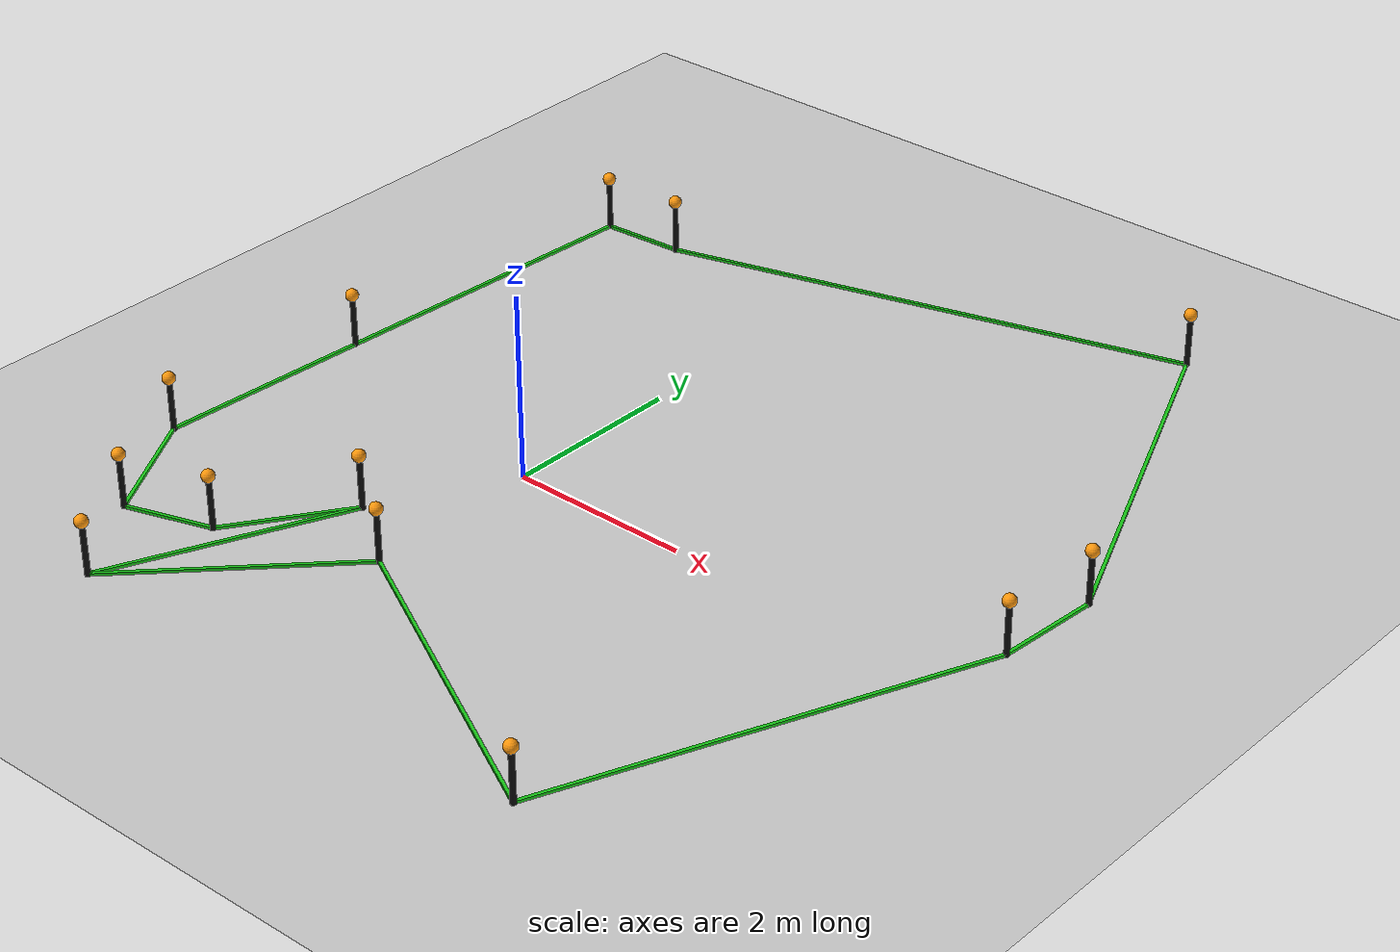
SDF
<?xml version="1.0" ?>
<sdf version="1.6">
  <world name="generated_task4_world">

    <include>
      <uri>model://sun</uri>
    </include>

    <include>
      <uri>model://ground_plane</uri>
    </include>

    <physics name="default_physics" default="0" type="ode">
      <max_step_size>0.001</max_step_size>
      <real_time_factor>1.0</real_time_factor>
      <real_time_update_rate>1000</real_time_update_rate>
    </physics>

    <model name="corner_pole_0">
      <static>true</static>
      <pose>3.684 6.067 0.275 0 0 0</pose>
      <link name="link">
        <visual name="visual">
          <geometry>
            <cylinder>
              <radius>0.03</radius>
              <length>0.55</length>
            </cylinder>
          </geometry>
          <material>
            <ambient>0.05 0.05 0.05 1</ambient>
            <diffuse>0.05 0.05 0.05 1</diffuse>
          </material>
        </visual>
        <collision name="collision">
          <geometry>
            <cylinder>
              <radius>0.03</radius>
              <length>0.55</length>
            </cylinder>
          </geometry>
        </collision>
      </link>
    </model>

    <model name="reflector_0">
      <static>true</static>
      <pose>3.684 6.067 0.600 0 0 0</pose>
      <link name="link">
        <visual name="visual">
          <geometry>
            <sphere>
              <radius>0.07</radius>
            </sphere>
          </geometry>
          <material>
            <ambient>1.0 0.6 0.05 1</ambient>
            <diffuse>1.0 0.6 0.05 1</diffuse>
          </material>
        </visual>
        <collision name="collision">
          <geometry>
            <sphere>
              <radius>0.07</radius>
            </sphere>
          </geometry>
        </collision>
      </link>
    </model>

    <model name="corner_pole_1">
      <static>true</static>
      <pose>-1.991 4.517 0.275 0 0 0</pose>
      <link name="link">
        <visual name="visual">
          <geometry>
            <cylinder>
              <radius>0.03</radius>
              <length>0.55</length>
            </cylinder>
          </geometry>
          <material>
            <ambient>0.05 0.05 0.05 1</ambient>
            <diffuse>0.05 0.05 0.05 1</diffuse>
          </material>
        </visual>
        <collision name="collision">
          <geometry>
            <cylinder>
              <radius>0.03</radius>
              <length>0.55</length>
            </cylinder>
          </geometry>
        </collision>
      </link>
    </model>

    <model name="reflector_1">
      <static>true</static>
      <pose>-1.991 4.517 0.600 0 0 0</pose>
      <link name="link">
        <visual name="visual">
          <geometry>
            <sphere>
              <radius>0.07</radius>
            </sphere>
          </geometry>
          <material>
            <ambient>1.0 0.6 0.05 1</ambient>
            <diffuse>1.0 0.6 0.05 1</diffuse>
          </material>
        </visual>
        <collision name="collision">
          <geometry>
            <sphere>
              <radius>0.07</radius>
            </sphere>
          </geometry>
        </collision>
      </link>
    </model>

    <model name="corner_pole_2">
      <static>true</static>
      <pose>-2.913 4.461 0.275 0 0 0</pose>
      <link name="link">
        <visual name="visual">
          <geometry>
            <cylinder>
              <radius>0.03</radius>
              <length>0.55</length>
            </cylinder>
          </geometry>
          <material>
            <ambient>0.05 0.05 0.05 1</ambient>
            <diffuse>0.05 0.05 0.05 1</diffuse>
          </material>
        </visual>
        <collision name="collision">
          <geometry>
            <cylinder>
              <radius>0.03</radius>
              <length>0.55</length>
            </cylinder>
          </geometry>
        </collision>
      </link>
    </model>

    <model name="reflector_2">
      <static>true</static>
      <pose>-2.913 4.461 0.600 0 0 0</pose>
      <link name="link">
        <visual name="visual">
          <geometry>
            <sphere>
              <radius>0.07</radius>
            </sphere>
          </geometry>
          <material>
            <ambient>1.0 0.6 0.05 1</ambient>
            <diffuse>1.0 0.6 0.05 1</diffuse>
          </material>
        </visual>
        <collision name="collision">
          <geometry>
            <sphere>
              <radius>0.07</radius>
            </sphere>
          </geometry>
        </collision>
      </link>
    </model>

    <model name="corner_pole_3">
      <static>true</static>
      <pose>-3.131 0.747 0.275 0 0 0</pose>
      <link name="link">
        <visual name="visual">
          <geometry>
            <cylinder>
              <radius>0.03</radius>
              <length>0.55</length>
            </cylinder>
          </geometry>
          <material>
            <ambient>0.05 0.05 0.05 1</ambient>
            <diffuse>0.05 0.05 0.05 1</diffuse>
          </material>
        </visual>
        <collision name="collision">
          <geometry>
            <cylinder>
              <radius>0.03</radius>
              <length>0.55</length>
            </cylinder>
          </geometry>
        </collision>
      </link>
    </model>

    <model name="reflector_3">
      <static>true</static>
      <pose>-3.131 0.747 0.600 0 0 0</pose>
      <link name="link">
        <visual name="visual">
          <geometry>
            <sphere>
              <radius>0.07</radius>
            </sphere>
          </geometry>
          <material>
            <ambient>1.0 0.6 0.05 1</ambient>
            <diffuse>1.0 0.6 0.05 1</diffuse>
          </material>
        </visual>
        <collision name="collision">
          <geometry>
            <sphere>
              <radius>0.07</radius>
            </sphere>
          </geometry>
        </collision>
      </link>
    </model>

    <model name="corner_pole_4">
      <static>true</static>
      <pose>-3.266 -1.628 0.275 0 0 0</pose>
      <link name="link">
        <visual name="visual">
          <geometry>
            <cylinder>
              <radius>0.03</radius>
              <length>0.55</length>
            </cylinder>
          </geometry>
          <material>
            <ambient>0.05 0.05 0.05 1</ambient>
            <diffuse>0.05 0.05 0.05 1</diffuse>
          </material>
        </visual>
        <collision name="collision">
          <geometry>
            <cylinder>
              <radius>0.03</radius>
              <length>0.55</length>
            </cylinder>
          </geometry>
        </collision>
      </link>
    </model>

    <model name="reflector_4">
      <static>true</static>
      <pose>-3.266 -1.628 0.600 0 0 0</pose>
      <link name="link">
        <visual name="visual">
          <geometry>
            <sphere>
              <radius>0.07</radius>
            </sphere>
          </geometry>
          <material>
            <ambient>1.0 0.6 0.05 1</ambient>
            <diffuse>1.0 0.6 0.05 1</diffuse>
          </material>
        </visual>
        <collision name="collision">
          <geometry>
            <sphere>
              <radius>0.07</radius>
            </sphere>
          </geometry>
        </collision>
      </link>
    </model>

    <model name="corner_pole_5">
      <static>true</static>
      <pose>-2.531 -2.898 0.275 0 0 0</pose>
      <link name="link">
        <visual name="visual">
          <geometry>
            <cylinder>
              <radius>0.03</radius>
              <length>0.55</length>
            </cylinder>
          </geometry>
          <material>
            <ambient>0.05 0.05 0.05 1</ambient>
            <diffuse>0.05 0.05 0.05 1</diffuse>
          </material>
        </visual>
        <collision name="collision">
          <geometry>
            <cylinder>
              <radius>0.03</radius>
              <length>0.55</length>
            </cylinder>
          </geometry>
        </collision>
      </link>
    </model>

    <model name="reflector_5">
      <static>true</static>
      <pose>-2.531 -2.898 0.600 0 0 0</pose>
      <link name="link">
        <visual name="visual">
          <geometry>
            <sphere>
              <radius>0.07</radius>
            </sphere>
          </geometry>
          <material>
            <ambient>1.0 0.6 0.05 1</ambient>
            <diffuse>1.0 0.6 0.05 1</diffuse>
          </material>
        </visual>
        <collision name="collision">
          <geometry>
            <sphere>
              <radius>0.07</radius>
            </sphere>
          </geometry>
        </collision>
      </link>
    </model>

    <model name="corner_pole_6">
      <static>true</static>
      <pose>-1.588 -2.602 0.275 0 0 0</pose>
      <link name="link">
        <visual name="visual">
          <geometry>
            <cylinder>
              <radius>0.03</radius>
              <length>0.55</length>
            </cylinder>
          </geometry>
          <material>
            <ambient>0.05 0.05 0.05 1</ambient>
            <diffuse>0.05 0.05 0.05 1</diffuse>
          </material>
        </visual>
        <collision name="collision">
          <geometry>
            <cylinder>
              <radius>0.03</radius>
              <length>0.55</length>
            </cylinder>
          </geometry>
        </collision>
      </link>
    </model>

    <model name="reflector_6">
      <static>true</static>
      <pose>-1.588 -2.602 0.600 0 0 0</pose>
      <link name="link">
        <visual name="visual">
          <geometry>
            <sphere>
              <radius>0.07</radius>
            </sphere>
          </geometry>
          <material>
            <ambient>1.0 0.6 0.05 1</ambient>
            <diffuse>1.0 0.6 0.05 1</diffuse>
          </material>
        </visual>
        <collision name="collision">
          <geometry>
            <sphere>
              <radius>0.07</radius>
            </sphere>
          </geometry>
        </collision>
      </link>
    </model>

    <model name="corner_pole_7">
      <static>true</static>
      <pose>-0.775 -1.420 0.275 0 0 0</pose>
      <link name="link">
        <visual name="visual">
          <geometry>
            <cylinder>
              <radius>0.03</radius>
              <length>0.55</length>
            </cylinder>
          </geometry>
          <material>
            <ambient>0.05 0.05 0.05 1</ambient>
            <diffuse>0.05 0.05 0.05 1</diffuse>
          </material>
        </visual>
        <collision name="collision">
          <geometry>
            <cylinder>
              <radius>0.03</radius>
              <length>0.55</length>
            </cylinder>
          </geometry>
        </collision>
      </link>
    </model>

    <model name="reflector_7">
      <static>true</static>
      <pose>-0.775 -1.420 0.600 0 0 0</pose>
      <link name="link">
        <visual name="visual">
          <geometry>
            <sphere>
              <radius>0.07</radius>
            </sphere>
          </geometry>
          <material>
            <ambient>1.0 0.6 0.05 1</ambient>
            <diffuse>1.0 0.6 0.05 1</diffuse>
          </material>
        </visual>
        <collision name="collision">
          <geometry>
            <sphere>
              <radius>0.07</radius>
            </sphere>
          </geometry>
        </collision>
      </link>
    </model>

    <model name="corner_pole_8">
      <static>true</static>
      <pose>-1.877 -3.895 0.275 0 0 0</pose>
      <link name="link">
        <visual name="visual">
          <geometry>
            <cylinder>
              <radius>0.03</radius>
              <length>0.55</length>
            </cylinder>
          </geometry>
          <material>
            <ambient>0.05 0.05 0.05 1</ambient>
            <diffuse>0.05 0.05 0.05 1</diffuse>
          </material>
        </visual>
        <collision name="collision">
          <geometry>
            <cylinder>
              <radius>0.03</radius>
              <length>0.55</length>
            </cylinder>
          </geometry>
        </collision>
      </link>
    </model>

    <model name="reflector_8">
      <static>true</static>
      <pose>-1.877 -3.895 0.600 0 0 0</pose>
      <link name="link">
        <visual name="visual">
          <geometry>
            <sphere>
              <radius>0.07</radius>
            </sphere>
          </geometry>
          <material>
            <ambient>1.0 0.6 0.05 1</ambient>
            <diffuse>1.0 0.6 0.05 1</diffuse>
          </material>
        </visual>
        <collision name="collision">
          <geometry>
            <sphere>
              <radius>0.07</radius>
            </sphere>
          </geometry>
        </collision>
      </link>
    </model>

    <model name="corner_pole_9">
      <static>true</static>
      <pose>0.026 -1.972 0.275 0 0 0</pose>
      <link name="link">
        <visual name="visual">
          <geometry>
            <cylinder>
              <radius>0.03</radius>
              <length>0.55</length>
            </cylinder>
          </geometry>
          <material>
            <ambient>0.05 0.05 0.05 1</ambient>
            <diffuse>0.05 0.05 0.05 1</diffuse>
          </material>
        </visual>
        <collision name="collision">
          <geometry>
            <cylinder>
              <radius>0.03</radius>
              <length>0.55</length>
            </cylinder>
          </geometry>
        </collision>
      </link>
    </model>

    <model name="reflector_9">
      <static>true</static>
      <pose>0.026 -1.972 0.600 0 0 0</pose>
      <link name="link">
        <visual name="visual">
          <geometry>
            <sphere>
              <radius>0.07</radius>
            </sphere>
          </geometry>
          <material>
            <ambient>1.0 0.6 0.05 1</ambient>
            <diffuse>1.0 0.6 0.05 1</diffuse>
          </material>
        </visual>
        <collision name="collision">
          <geometry>
            <sphere>
              <radius>0.07</radius>
            </sphere>
          </geometry>
        </collision>
      </link>
    </model>

    <model name="corner_pole_10">
      <static>true</static>
      <pose>3.520 -3.804 0.275 0 0 0</pose>
      <link name="link">
        <visual name="visual">
          <geometry>
            <cylinder>
              <radius>0.03</radius>
              <length>0.55</length>
            </cylinder>
          </geometry>
          <material>
            <ambient>0.05 0.05 0.05 1</ambient>
            <diffuse>0.05 0.05 0.05 1</diffuse>
          </material>
        </visual>
        <collision name="collision">
          <geometry>
            <cylinder>
              <radius>0.03</radius>
              <length>0.55</length>
            </cylinder>
          </geometry>
        </collision>
      </link>
    </model>

    <model name="reflector_10">
      <static>true</static>
      <pose>3.520 -3.804 0.600 0 0 0</pose>
      <link name="link">
        <visual name="visual">
          <geometry>
            <sphere>
              <radius>0.07</radius>
            </sphere>
          </geometry>
          <material>
            <ambient>1.0 0.6 0.05 1</ambient>
            <diffuse>1.0 0.6 0.05 1</diffuse>
          </material>
        </visual>
        <collision name="collision">
          <geometry>
            <sphere>
              <radius>0.07</radius>
            </sphere>
          </geometry>
        </collision>
      </link>
    </model>

    <model name="corner_pole_11">
      <static>true</static>
      <pose>5.375 0.641 0.275 0 0 0</pose>
      <link name="link">
        <visual name="visual">
          <geometry>
            <cylinder>
              <radius>0.03</radius>
              <length>0.55</length>
            </cylinder>
          </geometry>
          <material>
            <ambient>0.05 0.05 0.05 1</ambient>
            <diffuse>0.05 0.05 0.05 1</diffuse>
          </material>
        </visual>
        <collision name="collision">
          <geometry>
            <cylinder>
              <radius>0.03</radius>
              <length>0.55</length>
            </cylinder>
          </geometry>
        </collision>
      </link>
    </model>

    <model name="reflector_11">
      <static>true</static>
      <pose>5.375 0.641 0.600 0 0 0</pose>
      <link name="link">
        <visual name="visual">
          <geometry>
            <sphere>
              <radius>0.07</radius>
            </sphere>
          </geometry>
          <material>
            <ambient>1.0 0.6 0.05 1</ambient>
            <diffuse>1.0 0.6 0.05 1</diffuse>
          </material>
        </visual>
        <collision name="collision">
          <geometry>
            <sphere>
              <radius>0.07</radius>
            </sphere>
          </geometry>
        </collision>
      </link>
    </model>

    <model name="corner_pole_12">
      <static>true</static>
      <pose>5.467 1.786 0.275 0 0 0</pose>
      <link name="link">
        <visual name="visual">
          <geometry>
            <cylinder>
              <radius>0.03</radius>
              <length>0.55</length>
            </cylinder>
          </geometry>
          <material>
            <ambient>0.05 0.05 0.05 1</ambient>
            <diffuse>0.05 0.05 0.05 1</diffuse>
          </material>
        </visual>
        <collision name="collision">
          <geometry>
            <cylinder>
              <radius>0.03</radius>
              <length>0.55</length>
            </cylinder>
          </geometry>
        </collision>
      </link>
    </model>

    <model name="reflector_12">
      <static>true</static>
      <pose>5.467 1.786 0.600 0 0 0</pose>
      <link name="link">
        <visual name="visual">
          <geometry>
            <sphere>
              <radius>0.07</radius>
            </sphere>
          </geometry>
          <material>
            <ambient>1.0 0.6 0.05 1</ambient>
            <diffuse>1.0 0.6 0.05 1</diffuse>
          </material>
        </visual>
        <collision name="collision">
          <geometry>
            <sphere>
              <radius>0.07</radius>
            </sphere>
          </geometry>
        </collision>
      </link>
    </model>

    <model name="debug_boundary_0">
      <static>true</static>
      <pose>0.847 5.292 0.015 0 0 -2.875</pose>
      <link name="link">
        <visual name="visual">
          <geometry>
            <box>
              <size>5.883 0.035 0.03</size>
            </box>
          </geometry>
          <material>
            <ambient>0.1 0.8 0.1 1</ambient>
            <diffuse>0.1 0.8 0.1 1</diffuse>
          </material>
        </visual>
      </link>
    </model>

    <model name="debug_boundary_1">
      <static>true</static>
      <pose>-2.452 4.489 0.015 0 0 -3.082</pose>
      <link name="link">
        <visual name="visual">
          <geometry>
            <box>
              <size>0.924 0.035 0.03</size>
            </box>
          </geometry>
          <material>
            <ambient>0.1 0.8 0.1 1</ambient>
            <diffuse>0.1 0.8 0.1 1</diffuse>
          </material>
        </visual>
      </link>
    </model>

    <model name="debug_boundary_2">
      <static>true</static>
      <pose>-3.022 2.604 0.015 0 0 -1.629</pose>
      <link name="link">
        <visual name="visual">
          <geometry>
            <box>
              <size>3.721 0.035 0.03</size>
            </box>
          </geometry>
          <material>
            <ambient>0.1 0.8 0.1 1</ambient>
            <diffuse>0.1 0.8 0.1 1</diffuse>
          </material>
        </visual>
      </link>
    </model>

    <model name="debug_boundary_3">
      <static>true</static>
      <pose>-3.198 -0.440 0.015 0 0 -1.628</pose>
      <link name="link">
        <visual name="visual">
          <geometry>
            <box>
              <size>2.378 0.035 0.03</size>
            </box>
          </geometry>
          <material>
            <ambient>0.1 0.8 0.1 1</ambient>
            <diffuse>0.1 0.8 0.1 1</diffuse>
          </material>
        </visual>
      </link>
    </model>

    <model name="debug_boundary_4">
      <static>true</static>
      <pose>-2.899 -2.263 0.015 0 0 -1.046</pose>
      <link name="link">
        <visual name="visual">
          <geometry>
            <box>
              <size>1.467 0.035 0.03</size>
            </box>
          </geometry>
          <material>
            <ambient>0.1 0.8 0.1 1</ambient>
            <diffuse>0.1 0.8 0.1 1</diffuse>
          </material>
        </visual>
      </link>
    </model>

    <model name="debug_boundary_5">
      <static>true</static>
      <pose>-2.060 -2.750 0.015 0 0 0.304</pose>
      <link name="link">
        <visual name="visual">
          <geometry>
            <box>
              <size>0.989 0.035 0.03</size>
            </box>
          </geometry>
          <material>
            <ambient>0.1 0.8 0.1 1</ambient>
            <diffuse>0.1 0.8 0.1 1</diffuse>
          </material>
        </visual>
      </link>
    </model>

    <model name="debug_boundary_6">
      <static>true</static>
      <pose>-1.181 -2.011 0.015 0 0 0.968</pose>
      <link name="link">
        <visual name="visual">
          <geometry>
            <box>
              <size>1.435 0.035 0.03</size>
            </box>
          </geometry>
          <material>
            <ambient>0.1 0.8 0.1 1</ambient>
            <diffuse>0.1 0.8 0.1 1</diffuse>
          </material>
        </visual>
      </link>
    </model>

    <model name="debug_boundary_7">
      <static>true</static>
      <pose>-1.326 -2.657 0.015 0 0 -1.990</pose>
      <link name="link">
        <visual name="visual">
          <geometry>
            <box>
              <size>2.710 0.035 0.03</size>
            </box>
          </geometry>
          <material>
            <ambient>0.1 0.8 0.1 1</ambient>
            <diffuse>0.1 0.8 0.1 1</diffuse>
          </material>
        </visual>
      </link>
    </model>

    <model name="debug_boundary_8">
      <static>true</static>
      <pose>-0.925 -2.933 0.015 0 0 0.791</pose>
      <link name="link">
        <visual name="visual">
          <geometry>
            <box>
              <size>2.706 0.035 0.03</size>
            </box>
          </geometry>
          <material>
            <ambient>0.1 0.8 0.1 1</ambient>
            <diffuse>0.1 0.8 0.1 1</diffuse>
          </material>
        </visual>
      </link>
    </model>

    <model name="debug_boundary_9">
      <static>true</static>
      <pose>1.773 -2.888 0.015 0 0 -0.483</pose>
      <link name="link">
        <visual name="visual">
          <geometry>
            <box>
              <size>3.945 0.035 0.03</size>
            </box>
          </geometry>
          <material>
            <ambient>0.1 0.8 0.1 1</ambient>
            <diffuse>0.1 0.8 0.1 1</diffuse>
          </material>
        </visual>
      </link>
    </model>

    <model name="debug_boundary_10">
      <static>true</static>
      <pose>4.447 -1.582 0.015 0 0 1.175</pose>
      <link name="link">
        <visual name="visual">
          <geometry>
            <box>
              <size>4.817 0.035 0.03</size>
            </box>
          </geometry>
          <material>
            <ambient>0.1 0.8 0.1 1</ambient>
            <diffuse>0.1 0.8 0.1 1</diffuse>
          </material>
        </visual>
      </link>
    </model>

    <model name="debug_boundary_11">
      <static>true</static>
      <pose>5.421 1.213 0.015 0 0 1.490</pose>
      <link name="link">
        <visual name="visual">
          <geometry>
            <box>
              <size>1.149 0.035 0.03</size>
            </box>
          </geometry>
          <material>
            <ambient>0.1 0.8 0.1 1</ambient>
            <diffuse>0.1 0.8 0.1 1</diffuse>
          </material>
        </visual>
      </link>
    </model>

    <model name="debug_boundary_12">
      <static>true</static>
      <pose>4.576 3.926 0.015 0 0 1.965</pose>
      <link name="link">
        <visual name="visual">
          <geometry>
            <box>
              <size>4.637 0.035 0.03</size>
            </box>
          </geometry>
          <material>
            <ambient>0.1 0.8 0.1 1</ambient>
            <diffuse>0.1 0.8 0.1 1</diffuse>
          </material>
        </visual>
      </link>
    </model>

  </world>
</sdf>
